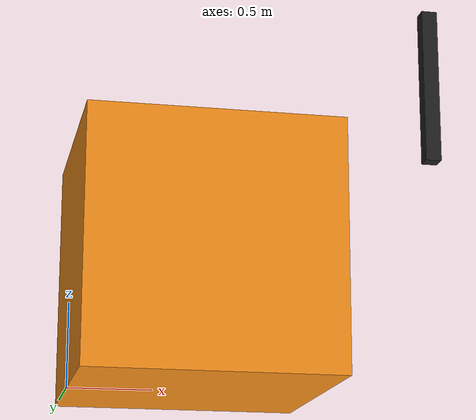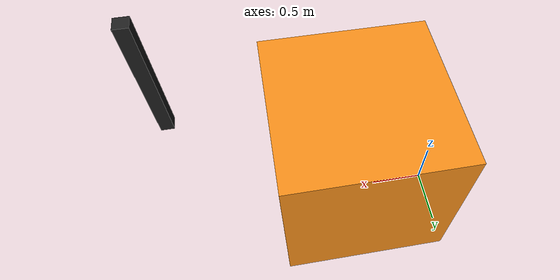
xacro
<?xml version="1.0"?>

<robot name="servo" xmlns:xacro="http://www.ros.org/wiki/xacro">

  <!-- Constants for robot dimensions -->
  <xacro:property name="PI" value="3.1415926535897931"/>
  <xacro:property name="mass" value="1" /> <!-- arbitrary value for mass -->
  <xacro:property name="mass1" value="5000" /> <!-- arbitrary value for mass -->
  <xacro:property name="radius" value="0.05" /> <!-- Radii of the cylinder-->
  <xacro:property name="length1" value="1.5" /> <!-- axel_holder -->
  <xacro:property name="length2" value="1" /> <!-- Rotator -->
  <xacro:property name="width" value="0.1" /> <!-- width of the beam -->
  <xacro:property name="offset" value="0" /> <!-- width of the beam -->

  <xacro:include filename="$(find servo_description)/urdf/servo.gazebo" />
  <xacro:include filename="$(find servo_description)/urdf/materials.xacro" />
  <!-- Used for fixing robot to Gazebo 'base_link' -->
  <link name="axel_holder">
    <collision>
      <origin xyz="${length1/2} 0 ${length1/2}" rpy="0 ${PI/2} 0"/>
      <geometry>
	       <box size="${length1} ${length1} ${length1}"/>
      </geometry>
    </collision>

    <visual>
      <origin xyz="${length1/2} 0 ${length1/2}" rpy="0 ${PI/2} 0"/>
      <geometry>
	       <box size="${length1} ${length1} ${length1}"/>
      </geometry>
      <material name="orange"/>
    </visual>

    <inertial>
      <origin xyz="${length1/2} 0 ${length1/2}" rpy="0 0 0"/>
      <mass value="${mass1}"/>
      <inertia
	  ixx="${mass1 / 12.0 * (length1*length1 + length1*length1)}" ixy="0.0" ixz="0.0"
	  iyy="${mass1 / 12.0 * (length1*length1 + length1*length1)}" iyz="0.0"
	  izz="${mass1 / 12.0 * (length1*length1 + length1*length1)}"/>
    </inertial>
  </link>

  <joint name="joint1" type="continuous">
    <parent link="axel_holder"/>
    <child link="rotater"/>
    <origin xyz="${1.5*length1+offset} 0 ${length1}" rpy="0 0 0"/>
    <axis xyz="1 0 0"/>
    <dynamics damping="0.7"/>
  </joint>

  <link name="rotater">
    <collision>
      <origin xyz="0 0 ${length2/2}" rpy="0 0 0"/>
      <geometry>
	       <box size="${width} ${width} ${length2}"/>
      </geometry>
    </collision>

    <visual>
      <origin xyz="0 0 ${length2/2}" rpy="0 0 0"/>
      <geometry>
	       <box size="${width} ${width} ${length2}"/>
      </geometry>
      <material name="black"/>
    </visual>

    <inertial>
      <origin xyz="0 0 ${length2/2}" rpy="0 0 0"/>
      <mass value="${mass}"/>
      <inertia
	  ixx="${mass / 12.0 * (width*width + width*width)}" ixy="0.0" ixz="0.0"
	  iyy="${mass / 12.0 * (length2*length2 + width*width)}" iyz="0.0"
	  izz="${mass / 12.0 * (width*width + length2*length2)}"/>
    </inertial>
  </link>

  <transmission name="tran1">
    <type>transmission_interface/SimpleTransmission</type>
    <joint name="joint1">
      <hardwareInterface>hardware_interface/EffortJointInterface</hardwareInterface>
    </joint>
    <actuator name="motor1">
      <hardwareInterface>hardware_interface/EffortJointInterface</hardwareInterface>
      <mechanicalReduction>1</mechanicalReduction>
    </actuator>
  </transmission>

</robot>
